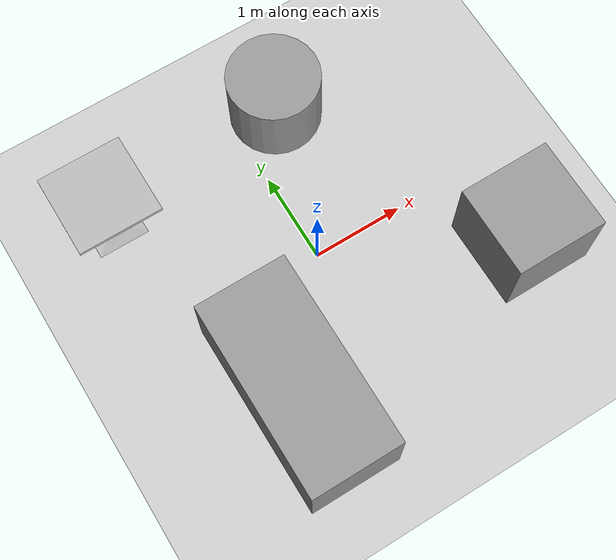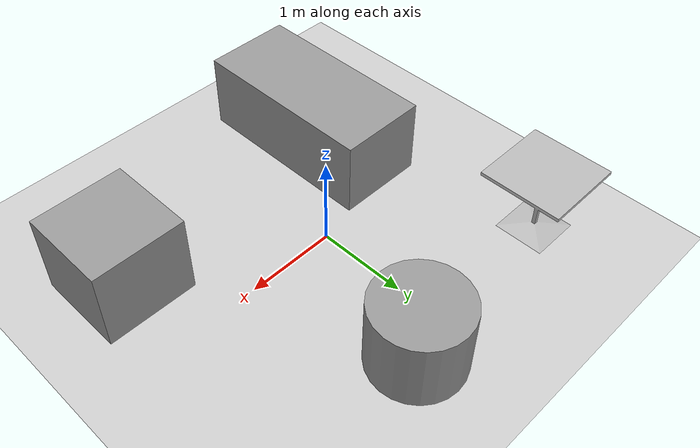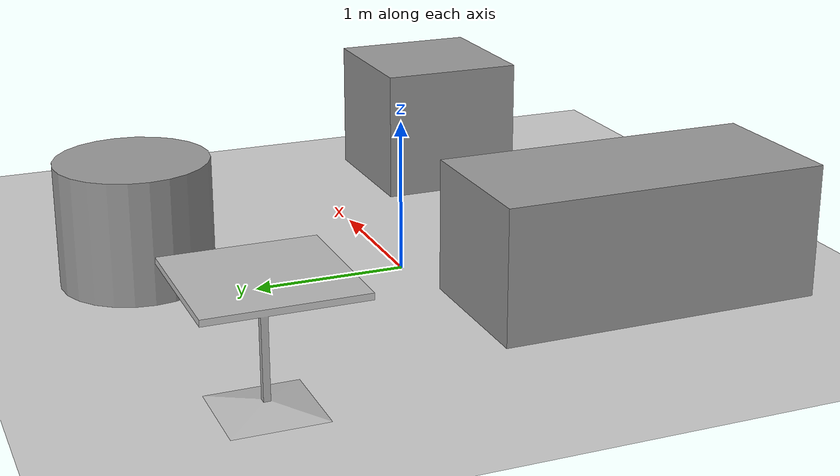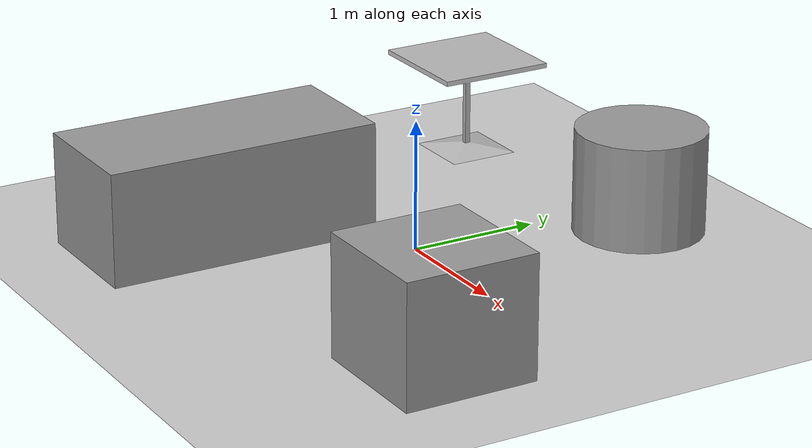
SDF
<sdf version="1.6">
 <world name="default">
  <light name="sun" type="directional">
   <pose>0 0 10 0 -0 0</pose>
   <diffuse>0.8 0.8 0.8 1</diffuse>
   <specular>0.2 0.2 0.2 1</specular>
   <attenuation>
    <range>1000</range>
    <constant>0.9</constant>
    <linear>0.01</linear>
    <quadratic>0.001</quadratic>
   </attenuation>
   <direction>-0.5 0.1 -0.9</direction>
  </light>
  <model name="ground_plane">
   <static>1</static>
   <link name="link">
    <collision name="collision">
     <geometry><plane><normal>0 0 1</normal><size>100 100</size></plane></geometry>
     <surface>
      <contact><collide_bitmask>65535</collide_bitmask></contact>
      <friction><ode><mu>100</mu><mu2>50</mu2></ode></friction>
     </surface>
    </collision>
    <visual name="visual">
     <cast_shadows>0</cast_shadows>
     <geometry><plane><normal>0 0 1</normal><size>100 100</size></plane></geometry>
     <material>
      <script><uri>file://media/materials/scripts/gazebo.material</uri><name>Gazebo/Grey</name></script>
     </material>
    </visual>
   </link>
  </model>
  <gravity>0 0 -9.8</gravity>
  <magnetic_field>6e-06 2.3e-05 -4.2e-05</magnetic_field>
  <atmosphere type="adiabatic"/>
  <physics name="default_physics" default="0" type="ode">
   <max_step_size>0.001</max_step_size>
   <real_time_factor>1</real_time_factor>
   <real_time_update_rate>1000</real_time_update_rate>
  </physics>
  <scene><ambient>0.4 0.4 0.4 1</ambient><background>0.7 0.7 0.7 1</background><shadows>1</shadows></scene>
  <audio><device>default</device></audio>
  <spherical_coordinates>
   <surface_model>EARTH_WGS84</surface_model>
   <latitude_deg>0</latitude_deg>
   <longitude_deg>0</longitude_deg>
   <elevation>0</elevation>
   <heading_deg>0</heading_deg>
  </spherical_coordinates>
  <model name="unit_box">
   <pose>-0.934767 -1.15794 0.432288 0 -1e-05 0</pose>
   <static>1</static>
   <link name="link">
    <inertial>
     <mass>1</mass>
     <inertia>
      <ixx>0.166667</ixx>
      <ixy>0</ixy>
      <ixz>0</ixz>
      <iyy>0.166667</iyy>
      <iyz>0</iyz>
      <izz>0.166667</izz>
     </inertia>
    </inertial>
    <collision name="collision"><geometry><box><size>1 2.13309 0.864586</size></box></geometry></collision>
    <visual name="visual">
     <geometry><box><size>1 2.13309 0.864586</size></box></geometry>
     <material>
      <script><name>Gazebo/Grey</name><uri>file://media/materials/scripts/gazebo.material</uri></script>
     </material>
    </visual>
   </link>
  </model>
  <model name="unit_box_0">
   <pose>1.86882 -0.960393 0.458166 0 -0 0</pose>
   <static>1</static>
   <link name="link">
    <inertial>
     <mass>1</mass>
     <inertia>
      <ixx>0.166667</ixx>
      <ixy>0</ixy>
      <ixz>0</ixz>
      <iyy>0.166667</iyy>
      <iyz>0</iyz>
      <izz>0.166667</izz>
     </inertia>
    </inertial>
    <collision name="collision"><geometry><box><size>1 1 0.916332</size></box></geometry></collision>
    <visual name="visual">
     <geometry><box><size>1 1 0.916332</size></box></geometry>
     <material>
      <script><name>Gazebo/Grey</name><uri>file://media/materials/scripts/gazebo.material</uri></script>
     </material>
    </visual>
   </link>
  </model>
  <model name="unit_cylinder">
   <pose>0.481494 1.64725 0.403262 4e-06 4e-06 -0</pose>
   <static>1</static>
   <link name="link">
    <inertial>
     <mass>1</mass>
     <inertia><ixx>0.145833</ixx><ixy>0</ixy><ixz>0</ixz><iyy>0.145833</iyy><iyz>0</iyz><izz>0.125</izz></inertia>
    </inertial>
    <collision name="collision">
     <geometry><cylinder><radius>0.5</radius><length>0.806531</length></cylinder></geometry>
    </collision>
    <visual name="visual">
     <geometry><cylinder><radius>0.5</radius><length>0.806531</length></cylinder></geometry>
     <material>
      <script><name>Gazebo/Grey</name><uri>file://media/materials/scripts/gazebo.material</uri></script>
     </material>
    </visual>
   </link>
  </model>
  <model name="cafe_table">
   <static>1</static>
   <link name="link">
    <collision name="surface">
     <pose>0 0 0.755 0 -0 0</pose>
     <geometry><box><size>0.913 0.913 0.04</size></box></geometry>
    </collision>
    <collision name="column">
     <pose>0 0 0.37 0 -0 0</pose>
     <geometry><box><size>0.042 0.042 0.74</size></box></geometry>
    </collision>
    <collision name="base">
     <pose>0 0 0.02 0 -0 0</pose>
     <geometry><box><size>0.56 0.56 0.04</size></box></geometry>
    </collision>
    <visual name="visual">
     <geometry><mesh><uri>model://cafe_table/meshes/cafe_table.dae</uri></mesh></geometry>
    </visual>
   </link>
   <pose>-1.64617 1.43518 0 0 -0 0</pose>
  </model>
 </world>
</sdf>
